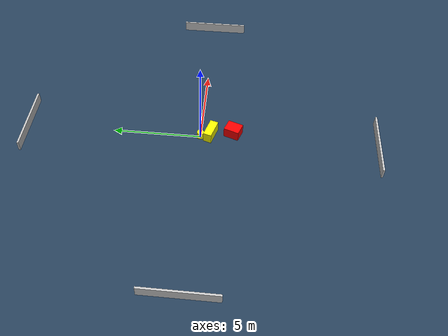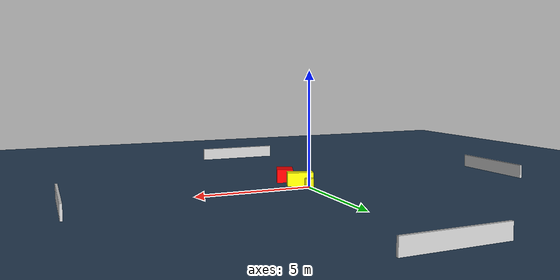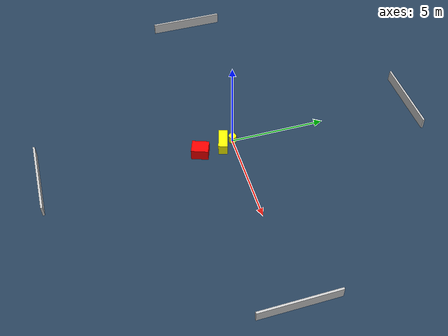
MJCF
<?xml version="1.0" ?>
<mujoco model="generated_environment">
  <option timestep="0.01" integrator="RK4" cone="elliptic"/>
  <default>
    <geom density="1"/>
  </default>
  <asset>
    <texture builtin="gradient" height="3072" name="skybox" rgb1="0.3 0.5 0.7" rgb2="0 0 0" type="skybox" width="512"/>
    <texture builtin="checker" height="300" name="groundplane" rgb1="0.2 0.3 0.4" rgb2="0.1 0.2 0.3" type="2d" width="300"/>
    <material name="groundplane" reflectance="0.2" texrepeat="5 5" texture="groundplane"/>
  </asset>
  <worldbody>
    <light dir="0 0 -1" directional="true" pos="0 0 1.5"/>
    <geom condim="3" friction="0.5 0.005 0.001" material="groundplane" name="floor" pos="0 0 0" size="0 0 0.05" type="plane"/>
    <body name="walls">
      <geom name="wall_1" condim="4" pos="-10.0 0.0 0.3" rgba="0.800000011920929 0.800000011920929 0.800000011920929 1.0" size="0.05 2.0 0.3" type="box"/>
      <geom name="wall_2" condim="4" pos="10.0 0.0 0.3" rgba="0.800000011920929 0.800000011920929 0.800000011920929 1.0" size="0.05 2.0 0.3" type="box"/>
      <geom name="wall_3" condim="4" pos="0.0 -10.0 0.3" rgba="0.800000011920929 0.800000011920929 0.800000011920929 1.0" size="2.0 0.05 0.3" type="box"/>
      <geom name="wall_4" condim="4" pos="0.0 10.0 0.3" rgba="0.800000011920929 0.800000011920929 0.800000011920929 1.0" size="2.0 0.05 0.3" type="box"/>
    </body>
    <body name="robot">
      <joint name="joint_x" type="slide" pos="0 0 0" axis="1 0 0"/>
      <joint name="joint_y" type="slide" pos="0 0 0" axis="0 1 0"/>
      <geom name="robot" type="cylinder" pos="0.0 0.0 0.2" size="0.2 0.2 0.0" mass="5.0" friction="1.0 0.005 0.0001" condim="4" rgba="1.0 1.0 0.0 1.0"/>
    </body>
    <body name="obstacle_1_movable">
      <geom name="obstacle_1_movable" condim="4" pos="0.19056912006501125 -0.5707464943906345 0.3" euler="0 0 253.06458584236972" friction="0.0 0.005 0.001" rgba="1.0 1.0 0.0 1.0" size="0.23514341474188094 0.568144212210271 0.3" type="box" mass="0.1"/>
      <joint type="free"/>
    </body>
    <body name="obstacle_2_static">
      <geom name="obstacle_2_static" condim="4" pos="0.3956146402484003 -1.8488201243013764 0.3" euler="0 0 69.91697002509433" friction="0.0 0.005 0.001" rgba="1.0 0.0 0.0 1.0" size="0.43943407538515966 0.35900284310029884 0.3" type="box"/>
    </body>
  </worldbody>
  <actuator>
    <motor name="actuator_x" joint="joint_x" gear="1" ctrlrange="-1 1"/>
    <motor name="actuator_y" joint="joint_y" gear="1" ctrlrange="-1 1"/>
  </actuator>
</mujoco>
